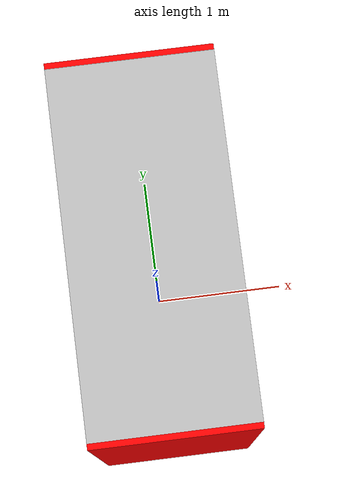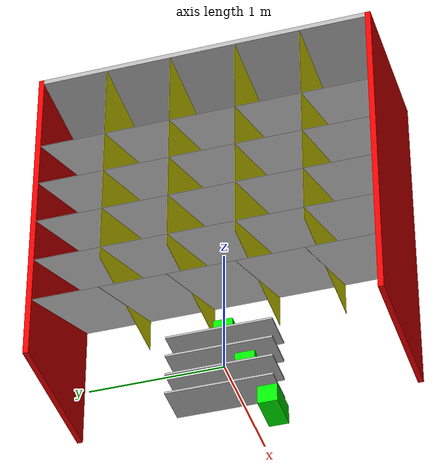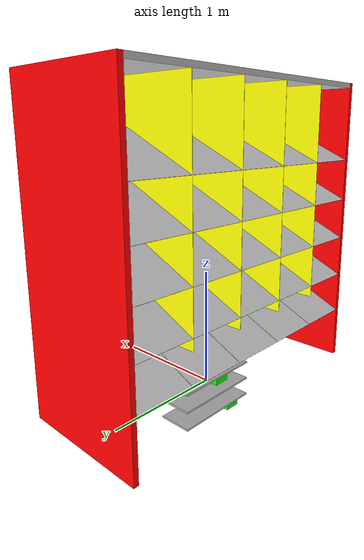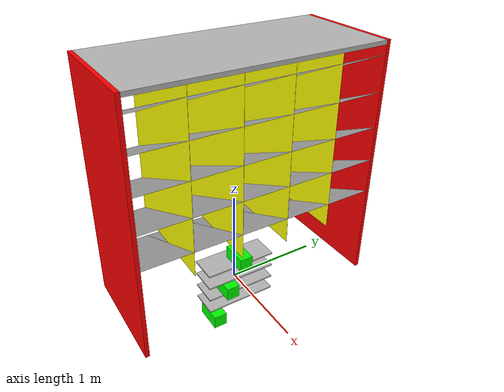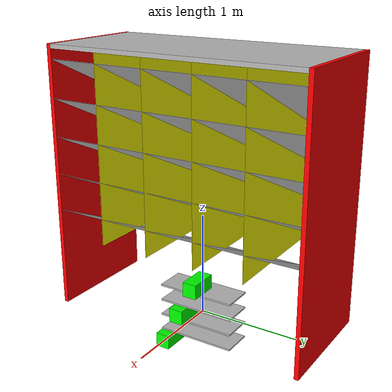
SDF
<sdf version='1.6'>
  <model name='cupboard'>

  <link name='cupboard_body'>
  <pose> 0 0 0 0 0 0</pose>

  <visual name='right_wall'>
    <pose> 0 1.27075 1.284 0 0 0</pose>
    <geometry>
      <box>
       <size>1.14 0.0415 2.568</size>
      </box>
    </geometry>
    <material>
      <diffuse>1 0 0 1.0</diffuse>
    </material>
  </visual>

  <visual name='left_wall'>
    <pose> 0 -1.27075 1.284 0 0 0</pose>
    <geometry>
      <box>
       <size>1.14 0.0415 2.568</size>
      </box>
    </geometry>
    <material>
      <diffuse>1 0 0 1.0</diffuse>
    </material>
  </visual>

<!-- Dividers -->

  <visual name='ab_col'>
    <pose> 0 0.7496 1.627 0 0 0</pose>
    <geometry>
      <box>
       <size>1.14 0.002 1.79889</size>
      </box>
    </geometry>
    <material>
      <diffuse>1 1 0 1.0</diffuse>
    </material>
  </visual>

  <visual name='bc_col'>
    <pose> 0 0.2502 1.627 0 0 0</pose>
    <geometry>
      <box>
       <size>1.14 0.002 1.79889</size>
      </box>
    </geometry>
    <material>
      <diffuse>1 1 0 1.0</diffuse>
    </material>
  </visual>

  <visual name='cd_col'>
    <pose> 0 -0.2502 1.627 0 0 0</pose>
    <geometry>
      <box>
       <size>1.14 0.002 1.79889</size>
      </box>
    </geometry>
    <material>
      <diffuse>1 1 0 1.0</diffuse>
    </material>
  </visual>

  <visual name='de_col'>
    <pose> 0 -0.7496 1.627 0 0 0</pose>
    <geometry>
      <box>
       <size>1.14 0.002 1.79889</size>
      </box>
    </geometry>
    <material>
      <diffuse>1 1 0 1.0</diffuse>
    </material>
  </visual>

<!-- Collisions for dividors -->

  <collision name='1a'>
    <pose> 0 0.24 -0.32 0 0 0</pose>
    <geometry>
      <box>
       <size>0.3 0.016 0.1439</size>
      </box>
    </geometry>
  </collision>

  <collision name='1b'>
    <pose> 0 0.08 -0.32 0 0 0</pose>
    <geometry>
      <box>
       <size>0.3 0.016 0.1439</size>
      </box>
    </geometry>
  </collision>

  <collision name='1c'>
    <pose> 0 -0.08 -0.32 0 0 0</pose>
    <geometry>
      <box>
       <size>0.3 0.016 0.1439</size>
      </box>
    </geometry>
  </collision>

  <collision name='1d'>
    <pose> 0 -0.24 -0.32 0 0 0</pose>
    <geometry>
      <box>
       <size>0.3 0.016 0.1439</size>
      </box>
    </geometry>
  </collision>

  <collision name='2a'>
    <pose> 0 0.24 -0.16 0 0 0</pose>
    <geometry>
      <box>
       <size>0.3 0.016 0.1439</size>
      </box>
    </geometry>
  </collision>

  <collision name='2b'>
    <pose> 0 0.08 -0.16 0 0 0</pose>
    <geometry>
      <box>
       <size>0.3 0.016 0.1439</size>
      </box>
    </geometry>
  </collision>

  <collision name='2c'>
    <pose> 0 -0.08 -0.16 0 0 0</pose>
    <geometry>
      <box>
       <size>0.3 0.016 0.1439</size>
      </box>
    </geometry>
  </collision>

  <collision name='2d'>
    <pose> 0 -0.24 -0.16 0 0 0</pose>
    <geometry>
      <box>
       <size>0.3 0.016 0.1439</size>
      </box>
    </geometry>
  </collision>

  <collision name='3a'>
    <pose> 0 0.24 0 0 0 0</pose>
    <geometry>
      <box>
       <size>0.3 0.016 0.1439</size>
      </box>
    </geometry>
  </collision>

  <collision name='3b'>
    <pose> 0 0.08 0 0 0 0</pose>
    <geometry>
      <box>
       <size>0.3 0.016 0.1439</size>
      </box>
    </geometry>
  </collision>

  <collision name='3c'>
    <pose> 0 -0.08 0 0 0 0</pose>
    <geometry>
      <box>
       <size>0.3 0.016 0.1439</size>
      </box>
    </geometry>
  </collision>

  <collision name='3d'>
    <pose> 0 -0.24 0 0 0 0</pose>
    <geometry>
      <box>
       <size>0.3 0.016 0.1439</size>
      </box>
    </geometry>
  </collision>

  <collision name='4a'>
    <pose> 0 0.24 0.16 0 0 0</pose>
    <geometry>
      <box>
       <size>0.3 0.016 0.1439</size>
      </box>
    </geometry>
  </collision>

  <collision name='4b'>
    <pose> 0 0.08 0.16 0 0 0</pose>
    <geometry>
      <box>
       <size>0.3 0.016 0.1439</size>
      </box>
    </geometry>
  </collision>

  <collision name='4c'>
    <pose> 0 -0.08 0.16 0 0 0</pose>
    <geometry>
      <box>
       <size>0.3 0.016 0.1439</size>
      </box>
    </geometry>
  </collision>

  <collision name='4d'>
    <pose> 0 -0.24 0.16 0 0 0</pose>
    <geometry>
      <box>
       <size>0.3 0.016 0.1439</size>
      </box>
    </geometry>
  </collision>

  <collision name='5a'>
    <pose> 0 0.24 0.32 0 0 0</pose>
    <geometry>
      <box>
       <size>0.3 0.016 0.1439</size>
      </box>
    </geometry>
  </collision>

  <collision name='5b'>
    <pose> 0 0.08 0.32 0 0 0</pose>
    <geometry>
      <box>
       <size>0.3 0.016 0.1439</size>
      </box>
    </geometry>
  </collision>

  <collision name='5c'>
    <pose> 0 -0.08 0.32 0 0 0</pose>
    <geometry>
      <box>
       <size>0.3 0.016 0.1439</size>
      </box>
    </geometry>
  </collision>

  <collision name='5d'>
    <pose> 0 -0.24 0.32 0 0 0</pose>
    <geometry>
      <box>
       <size>0.3 0.016 0.1439</size>
      </box>
    </geometry>
  </collision>
</link>

<link name='top_and_bottom'>
  <pose> 0 0 0 0 0 0</pose>

  <visual name='top'>
    <pose> 0 0 2.54725 0 0 0</pose>
    <geometry>
      <box>
       <size>1.14 2.5 0.0415</size>
      </box>
    </geometry>
  </visual>

<!-- Row 1 -->

  <visual name='1a'>
    <pose> 0 -1.0008 2.1675 0 -0.436332 0</pose>
    <geometry>
      <box>
       <size>1.25785 0.4984 0.002</size> <!-- Width: 1.140/cos(25) --> <!-- width, length, thickness -->
      </box>
    </geometry>
  </visual>

  <visual name='1b'>
    <pose> 0 -0.5004 2.1675 0 -0.436332 0</pose>
    <geometry>
      <box>
       <size>1.25785 0.4984 0.002</size> <!-- Width: 1.140/cos(25) --> <!-- width, length, thickness -->
      </box>
    </geometry>
  </visual>

  <visual name='1c'>
    <pose> 0 0 2.1675 0 -0.436332 0</pose>
    <geometry>
      <box>
       <size>1.25785 0.4984 0.002</size> <!-- Width: 1.140/cos(25) --> <!-- width, length, thickness -->
      </box>
    </geometry>
  </visual>

  <visual name='1d'>
    <pose> 0 0.5004 2.1675 0 -0.436332 0</pose>
    <geometry>
      <box>
       <size>1.25785 0.4984 0.002</size> <!-- Width: 1.140/cos(25) --> <!-- width, length, thickness -->
      </box>
    </geometry>
  </visual>

  <visual name='1e'>
    <pose> 0 1.0008 2.1675 0 -0.436332 0</pose>
    <geometry>
      <box>
       <size>1.25785 0.4984 0.002</size> <!-- Width: 1.140/cos(25) --> <!-- width, length, thickness -->
      </box>
    </geometry>
  </visual>

<!-- Row 2 -->

  <visual name='2a'>
    <pose> 0 -1.0008 1.8075 0 -0.436332 0</pose>
    <geometry>
      <box>
       <size>1.25785 0.4984 0.002</size> <!-- Width: 1.140/cos(25) --> <!-- width, length, thickness -->
      </box>
    </geometry>
  </visual>

  <visual name='2b'>
    <pose> 0 -0.5004 1.8075 0 -0.436332 0</pose>
    <geometry>
      <box>
       <size>1.25785 0.4984 0.002</size> <!-- Width: 1.140/cos(25) --> <!-- width, length, thickness -->
      </box>
    </geometry>
  </visual>

  <visual name='2c'>
    <pose> 0 0 1.8075 0 -0.436332 0</pose>
    <geometry>
      <box>
       <size>1.25785 0.4984 0.002</size> <!-- Width: 1.140/cos(25) --> <!-- width, length, thickness -->
      </box>
    </geometry>
  </visual>

  <visual name='2d'>
    <pose> 0 0.5004 1.8075 0 -0.436332 0</pose>
    <geometry>
      <box>
       <size>1.25785 0.4984 0.002</size> <!-- Width: 1.140/cos(25) --> <!-- width, length, thickness -->
      </box>
    </geometry>
  </visual>

  <visual name='2e'>
    <pose> 0 1.0008 1.8075 0 -0.436332 0</pose>
    <geometry>
      <box>
       <size>1.25785 0.4984 0.002</size> <!-- Width: 1.140/cos(25) --> <!-- width, length, thickness -->
      </box>
    </geometry>
  </visual>

<!-- Row 3 -->

  <visual name='3a'>
    <pose> 0 -1.0008 1.4475 0 -0.436332 0</pose>
    <geometry>
      <box>
       <size>1.25785 0.4984 0.002</size> <!-- Width: 1.140/cos(25) --> <!-- width, length, thickness -->
      </box>
    </geometry>
  </visual>

  <visual name='3b'>
    <pose> 0 -0.5004 1.4475 0 -0.436332 0</pose>
    <geometry>
      <box>
       <size>1.25785 0.4984 0.002</size> <!-- Width: 1.140/cos(25) --> <!-- width, length, thickness -->
      </box>
    </geometry>
  </visual>

  <visual name='3c'>
    <pose> 0 0 1.4475 0 -0.436332 0</pose>
    <geometry>
      <box>
       <size>1.25785 0.4984 0.002</size> <!-- Width: 1.140/cos(25) --> <!-- width, length, thickness -->
      </box>
    </geometry>
  </visual>

  <visual name='3d'>
    <pose> 0 0.5004 1.4475 0 -0.436332 0</pose>
    <geometry>
      <box>
       <size>1.25785 0.4984 0.002</size> <!-- Width: 1.140/cos(25) --> <!-- width, length, thickness -->
      </box>
    </geometry>
  </visual>

  <visual name='3e'>
    <pose> 0 1.0008 1.4475 0 -0.436332 0</pose>
    <geometry>
      <box>
       <size>1.25785 0.4984 0.002</size> <!-- Width: 1.140/cos(25) --> <!-- width, length, thickness -->
      </box>
    </geometry>
  </visual>

  <!-- Row 4 -->

  <visual name='4a'>
    <pose> 0 -1.0008 1.0875 0 -0.436332 0</pose>
    <geometry>
      <box>
       <size>1.25785 0.4984 0.002</size> <!-- Width: 1.140/cos(25) --> <!-- width, length, thickness -->
      </box>
    </geometry>
  </visual>

  <visual name='4b'>
    <pose> 0 -0.5004 1.0875 0 -0.436332 0</pose>
    <geometry>
      <box>
       <size>1.25785 0.4984 0.002</size> <!-- Width: 1.140/cos(25) --> <!-- width, length, thickness -->
      </box>
    </geometry>
  </visual>

  <visual name='4c'>
    <pose> 0 0 1.0875 0 -0.436332 0</pose>
    <geometry>
      <box>
       <size>1.25785 0.4984 0.002</size> <!-- Width: 1.140/cos(25) --> <!-- width, length, thickness -->
      </box>
    </geometry>
  </visual>

  <visual name='4d'>
    <pose> 0 0.5004 1.0875 0 -0.436332 0</pose>
    <geometry>
      <box>
       <size>1.25785 0.4984 0.002</size> <!-- Width: 1.140/cos(25) --> <!-- width, length, thickness -->
      </box>
    </geometry>
  </visual>

  <visual name='4e'>
    <pose> 0 1.0008 1.0875 0 -0.436332 0</pose>
    <geometry>
      <box>
       <size>1.25785 0.4984 0.002</size> <!-- Width: 1.140/cos(25) --> <!-- width, length, thickness -->
      </box>
    </geometry>
  </visual>

<!-- Row 5 -->

  <visual name='5a'>
    <pose> 0 -1.0008 0.7276 0 -0.436332 0</pose>
    <geometry>
      <box>
       <size>1.25785 0.4984 0.002</size> <!-- Width: 1.140/cos(25) --> <!-- width, length, thickness -->
      </box>
    </geometry>
  </visual>

  <visual name='5b'>
    <pose> 0 -0.5004 0.7276 0 -0.436332 0</pose>
    <geometry>
      <box>
       <size>1.25785 0.4984 0.002</size> <!-- Width: 1.140/cos(25) --> <!-- width, length, thickness -->
      </box>
    </geometry>
  </visual>

  <visual name='5c'>
    <pose> 0 0 0.7276 0 -0.436332 0</pose>
    <geometry>
      <box>
       <size>1.25785 0.4984 0.002</size> <!-- Width: 1.140/cos(25) --> <!-- width, length, thickness -->
      </box>
    </geometry>
  </visual>

  <visual name='5d'>
    <pose> 0 0.5004 0.7276 0 -0.436332 0</pose>
    <geometry>
      <box>
       <size>1.25785 0.4984 0.002</size> <!-- Width: 1.140/cos(25) --> <!-- width, length, thickness -->
      </box>
    </geometry>
  </visual>

  <visual name='5e'>
    <pose> 0 1.0008 0.7276 0 -0.436332 0</pose>
    <geometry>
      <box>
       <size>1.25785 0.4984 0.002</size> <!-- Width: 1.140/cos(25) --> <!-- width, length, thickness -->
      </box>
    </geometry>
  </visual>

  <collision name='bottom'>
    <pose> 0 0 -0.3995 0 0 0</pose>
    <geometry>
      <box>
       <size>0.3 0.815 0.016</size>
      </box>
    </geometry>
  </collision>

  <collision name='top'>
    <pose> 0 0 0.3995 0 0 0</pose>
    <geometry>
      <box>
       <size>0.3 0.815 0.016</size>
      </box>
    </geometry>
  </collision>

  <visual name='shelf_1'>
    <pose> 0 0 -0.24 0 0 0</pose>
    <geometry>
      <box>
       <size>0.3 0.783 0.016</size>
      </box>
    </geometry>
  </visual>

  <visual name='shelf_2'>
    <pose> 0 0 -0.08 0 0 0</pose>
    <geometry>
      <box>
       <size>0.3 0.783 0.016</size>
      </box>
    </geometry>
  </visual>

  <visual name='shelf_3'>
    <pose> 0 0 0.08 0 0 0</pose>
    <geometry>
      <box>
       <size>0.3 0.783 0.016</size>
      </box>
    </geometry>
  </visual>

  <visual name='shelf_4'>
    <pose> 0 0 0.24 0 0 0</pose>
    <geometry>
      <box>
       <size>0.3 0.783 0.016</size>
      </box>
    </geometry>
  </visual>

<!-- Collisions -->

  <collision name='shelf_1'>
    <pose> 0 0 -0.24 0 0 0</pose>
    <geometry>
      <box>
       <size>0.3 0.6 0.016</size>
      </box>
    </geometry>
  </collision>

  <collision name='shelf_2'>
    <pose> 0 0 -0.08 0 0 0</pose>
    <geometry>
      <box>
       <size>0.3 0.6 0.016</size>
      </box>
    </geometry>
  </collision>

  <collision name='shelf_3'>
    <pose> 0 0 0.08 0 0 0</pose>
    <geometry>
      <box>
       <size>0.3 0.6 0.016</size>
      </box>
    </geometry>
  </collision>

  <collision name='shelf_4'>
    <pose> 0 0 0.24 0 0 0</pose>
    <geometry>
      <box>
       <size>0.3 0.6 0.016</size>
      </box>
    </geometry>
  </collision>

  <!-- Blocking blocks -->

<!-- Naming scheme: block_rowNumber_between2ColumnLetters -->

  <!-- Blocking row 5, col between b and c -->
  <visual name='block_5_bc'>
    <pose> 0.1 0 0.32 0 0 0</pose>
    <geometry>
      <box>
      <size>0.29 0.143 0.143</size>
      </box>
    </geometry>
    <material>
      <diffuse>0 1 0 1.0</diffuse>
    </material>
  </visual>
  <collision name='block_5_bc'>
    <pose> 0.1 0 0.32 0 0 0</pose>
    <geometry>
      <box>
      <size>0.29 0.143 0.143</size>
      </box>
    </geometry>
  </collision>

  <!-- Blocking row 3, col between a and b -->
  <visual name='block_3_ab'>
    <pose> 0.1 -0.16 0 0 0 0</pose>
    <geometry>
      <box>
      <size>0.29 0.143 0.143</size>
      </box>
    </geometry>
    <material>
      <diffuse>0 1 0 1.0</diffuse>
    </material>
  </visual>
  <collision name='block_3_ab'>
    <pose> 0.1 -0.16 0 0 0 0</pose>
    <geometry>
      <box>
      <size>0.29 0.143 0.143</size>
      </box>
    </geometry>
    <material>
      <diffuse>0 1 0 1.0</diffuse>
    </material>
  </collision>

  <!-- Blocking row 1, before col a -->
  <visual name='block_1_a'>
    <pose> 0.1 -0.32 -0.32 0 0 0</pose>
    <geometry>
      <box>
      <size>0.29 0.143 0.143</size>
      </box>
    </geometry>
    <material>
      <diffuse>0 1 0 1.0</diffuse>
    </material>
  </visual>
  <collision name='block_1_a'>
    <pose> 0.1 -0.32 -0.32 0 0 0</pose>
    <geometry>
      <box>
      <size>0.29 0.143 0.143</size>
      </box>
    </geometry>
  </collision>

 </link>

  <!-- joint between bottom_top and world -->
  <joint name='top_and_bottom_cupboard_body' type='fixed'>
    <child>top_and_bottom</child>
    <parent>cupboard_body</parent>
    <pose>0 0 0 0 0 0 </pose>
  </joint>

  </model>
</sdf>
